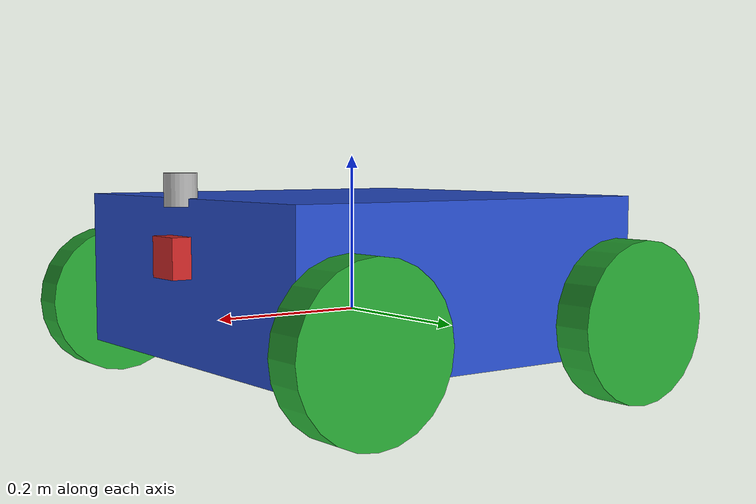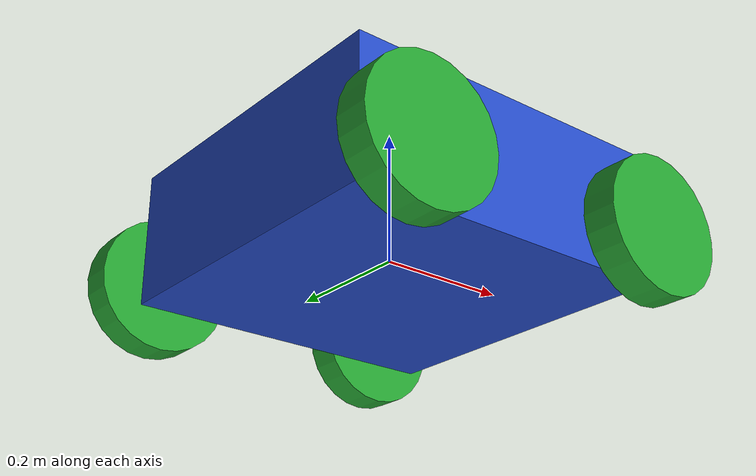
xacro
<?xml version='1.0'?>

<robot name="mome" xmlns:xacro="http://www.ros.org/wiki/xacro">
    <xacro:property name="robot_name" value="mome" />
    <xacro:property name="robot_chassis_mass" value="15"/>
    <xacro:property name="robot_chassis_length" value="0.2"/>
    <xacro:property name="robot_chassis_radius" value="0.25"/>
    <xacro:property name="robot_caster_wheel_radius" value="0.05"/>
    <xacro:property name="robot_caster_wheel_radius_collision" value="0.0499"/>

    <xacro:property name="robot_wheel_mass" value="5"/>
    <xacro:property name="robot_wheel_length" value="0.05"/>
    <xacro:property name="robot_wheel_radius" value="0.1"/>

    <xacro:property name="camera_mass" value="0.1"/>

    <!-- Lidar properties -->
    <xacro:property name="lidar_samples" value="720"/>
    <xacro:property name="lidar_resolution" value="1.0"/>
    <xacro:property name="lidar_range" value="30.0"/>

    <!-- Project center to the ground -->
    <link name="dummy"></link>

    <!-- Make Chassis of Bot -->
    <link name="body_link">
        <pose>0 0 0.1 0 0 0</pose>
        <inertial>
        <mass value="${robot_chassis_mass}"/>
        <origin xyz="0.0 0 0" rpy=" 0 0 0"/>
        <inertia
            ixx="0.147116667" ixy="0" ixz="0"
            iyy="0.334951167" iyz="0"
            izz="0.3978345"
        />
        </inertial>

        <collision name="collision">
            <origin xyz="0 0 0.05" rpy=" 0 0 0"/>
            <geometry>
                <box size="0.5 0.5 0.2"/>
            </geometry>
        </collision>

        <visual name="chassis_visual">
            <origin xyz="0 0 0.05" rpy=" 0 0 0"/>
            <geometry>
                <box size="0.5 0.5 0.2"/>
            </geometry>
        </visual>
  </link>

  <!-- Right Wheel Back -->
  <link name="wheel2_link">
    <inertial>
      <mass value="${robot_wheel_mass}"/>
      <origin xyz="0 0 0" rpy="0 1.5707 1.5707"/>
      <inertia
        ixx="0.1" ixy="0.0" ixz="0.0"
        iyy="0.1" iyz="0.0"
        izz="0.1"
      />
    </inertial>

    <visual>
      <origin xyz="0 0 0" rpy="0 1.5707 1.5707"/>
      <geometry>
        <cylinder radius="${robot_wheel_radius}" length="${robot_wheel_length}"/>
      </geometry>
    </visual>

    <collision>
      <origin xyz="0 0 0" rpy="0 1.5707 1.5707"/>
      <geometry>
        <cylinder radius="${robot_wheel_radius}" length="${robot_wheel_length}"/>
      </geometry>
    </collision>

  </link>

  <!-- Right Wheel Front-->
  <link name="wheel4_link">
    <inertial>
      <mass value="${robot_wheel_mass}"/>
      <origin xyz="0 0 0" rpy="0 1.5707 1.5707"/>
      <inertia
        ixx="0.1" ixy="0.0" ixz="0.0"
        iyy="0.1" iyz="0.0"
        izz="0.1"
      />
    </inertial>

    <visual>
      <origin xyz="0 0 0" rpy="0 1.5707 1.5707"/>
      <geometry>
        <cylinder radius="${robot_wheel_radius}" length="${robot_wheel_length}"/>
      </geometry>
    </visual>

    <collision>
      <origin xyz="0 0 0" rpy="0 1.5707 1.5707"/>
      <geometry>
        <cylinder radius="${robot_wheel_radius}" length="${robot_wheel_length}"/>
      </geometry>
    </collision>

  </link>

  <!-- Left wheel Back-->
  <link name="wheel1_link">
    <inertial>
      <mass value="${robot_wheel_mass}"/>
      <origin xyz="0 0 0" rpy="0 1.5707 1.5707"/>
      <inertia
        ixx="0.1" ixy="0.0" ixz="0.0"
        iyy="0.1" iyz="0.0"
        izz="0.1"
      />
    </inertial>

    <visual>
      <origin xyz="0 0 0" rpy="0 1.5707 1.5707"/>
      <geometry>
        <cylinder radius="${robot_wheel_radius}" length="${robot_wheel_length}"/>
      </geometry>
    </visual>

    <collision>
      <origin xyz="0 0 0" rpy="0 1.5707 1.5707"/>
      <geometry>
        <cylinder radius="${robot_wheel_radius}" length="${robot_wheel_length}"/>
      </geometry>
    </collision>

  </link>

  <!-- Left wheel Front-->
  <link name="wheel3_link">
    <inertial>
      <mass value="${robot_wheel_mass}"/>
      <origin xyz="0 0 0" rpy="0 1.5707 1.5707"/>
      <inertia
        ixx="0.1" ixy="0.0" ixz="0.0"
        iyy="0.1" iyz="0.0"
        izz="0.1"
      />
    </inertial>

    <visual>
      <origin xyz="0 0 0" rpy="0 1.5707 1.5707"/>
      <geometry>
        <cylinder radius="${robot_wheel_radius}" length="${robot_wheel_length}"/>
      </geometry>
    </visual>

    <collision>
      <origin xyz="0 0 0" rpy="0 1.5707 1.5707"/>
      <geometry>
        <cylinder radius="${robot_wheel_radius}" length="${robot_wheel_length}"/>
      </geometry>
    </collision>

  </link>

  <!-- Camera -->
  <link name="camera_link">
    <inertial>
      <mass value="${camera_mass}"/>
      <origin xyz="0 0 0" rpy="0 0 0"/>
      <inertia
        ixx="1e-6" ixy="0.0" ixz="0.0"
        iyy="1e-6" iyz="0.0"
        izz="1e-6"
      />
    </inertial>

    <visual>
      <origin xyz="0 0 0" rpy="0 0 0"/>
      <geometry>
        <box size="0.05 0.05 0.05"/>
      </geometry>
    </visual>

    <collision>
      <origin xyz="0 0 0" rpy="0 0 0"/>
      <geometry>
        <box size="0.05 0.05 0.05"/>
      </geometry>
    </collision>
  </link>

  <link name="lidar_link">
        <visual>
            <geometry>
                <cylinder length="0.04" radius="0.02"/>
            </geometry>
            <origin rpy="0 0 0" xyz="0 0 0"/>
        </visual>
        <sensor type="ray" name="lidar">
            <ray>
                <scan>
                    <horizontal>
                        <samples>${lidar_samples}</samples>
                        <resolution>${lidar_resolution}</resolution>
                        <min_angle>-1.5708</min_angle>
                        <max_angle>1.5708</max_angle>
                    </horizontal>
                </scan>
                <range>
                    <min>0.0</min>
                    <max>${lidar_range}</max>
                </range>
            </ray>
            <plugin name="lidar_controller" filename="libgazebo_ros_laser.so"/>
        </sensor>
    </link>

    <!-- Define Joints -->
    <!-- Joint for base to the ground -->
    <joint type="fixed" name="dummy_joint">
        <parent link="dummy"/>
        <child link="body_link"/>
        <origin xyz="0 0 0" rpy="0 0 0" />
    </joint>

    <!-- Right Wheel Joint Back-->
    <joint type="continuous" name="wheel2_joint">
        <origin xyz="-0.2 -0.30 0" rpy="0 0 0" />
        <parent link="body_link"/>
        <child link="wheel2_link"/>
        <axis xyz="0 1 0"/>
    </joint>

    <!-- Right Wheel Joint Front-->
    <joint type="continuous" name="wheel4_joint">
        <origin xyz="0.2 -0.30 0" rpy="0 0 0" />
        <parent link="body_link"/>
        <child link="wheel4_link"/>
        <axis xyz="0 1 0"/>
    </joint>

    <!-- Left Wheel Joint Back-->
    <joint type="continuous" name="wheel1_joint">
        <origin xyz="-0.2 0.30 0" rpy="0 0 0" />
        <parent link="body_link"/>
        <child link="wheel1_link"/>
        <axis xyz="0 1 0"/>
    </joint>

    <!-- Left Wheel Joint Front-->
    <joint type="continuous" name="wheel3_joint">
        <origin xyz="0.2 0.30 0" rpy="0 0 0" />
        <parent link="body_link"/>
        <child link="wheel3_link"/>
        <axis xyz="0 1 0"/>
    </joint>

    <!-- Camera Joint -->
    <joint name="camera_joint" type="fixed">
        <origin xyz="0.25 0 0.08" rpy="0 0 0"/>
        <parent link="body_link"/>
        <child link="camera_link"/>
    </joint>

    <joint name="lidar_joint" type="fixed">
        <parent link="body_link"/>
        <child link="lidar_link"/>
        <origin xyz="0.25 0 0.16" rpy="0 0 0"/>
    </joint>

	<!-- Motor, Camera and Lidar Simulation -->
	<xacro:include filename="$(find mome)/urdf/mome.gazebo" />
</robot>
